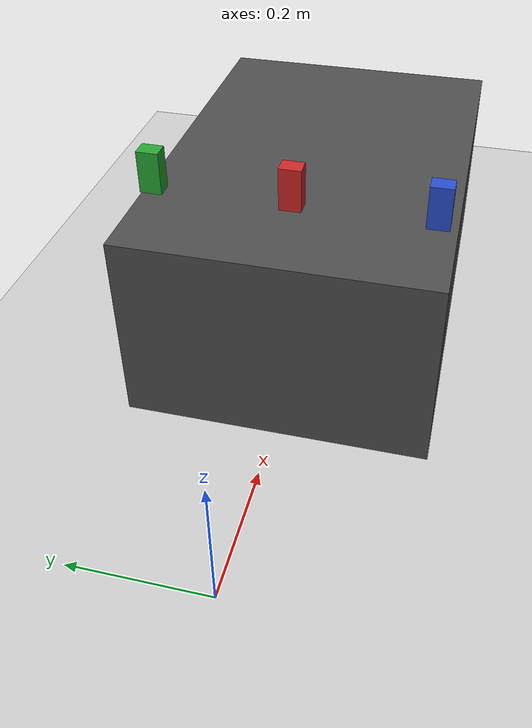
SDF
<sdf version="1.6">
 <world name="default">
  <include><uri>model://sun</uri></include>
  <include><uri>model://ground_plane</uri></include>
  <include><uri>model://table</uri><name>my_table</name><pose>0.6 0.0 0 0 0 1.5708</pose></include>
  <include><uri>model://stone</uri><name>target_stone</name><pose>0.4 0.0 0.35 0 0 0</pose></include>
  <include><uri>model://blue_stone</uri><name>stone_blue</name><pose>0.4 -0.2 0.35 0 0 0</pose></include>
  <include><uri>model://green_stone</uri><name>stone_green</name><pose>0.4 0.2 0.35 0 0 0</pose></include>
 </world>
</sdf>

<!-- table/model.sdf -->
<sdf version='1.6'>
  <model name='table'>
    <link name='link'>
      <pose>0 0 0.15 0 -0 0</pose>
      <inertial>
        <pose>0 0 0 0 -0 0</pose>
        <mass>10</mass>
        <inertia>
          <ixx>0.166667</ixx>
          <ixy>0</ixy>
          <ixz>0</ixz>
          <iyy>0.166667</iyy>
          <iyz>0</iyz>
          <izz>0.166667</izz>
        </inertia>
      </inertial>
      <self_collide>0</self_collide>
      <enable_wind>0</enable_wind>
      <kinematic>0</kinematic>

      <visual name='visual'>
        <pose>0 0 0 0 -0 0</pose>
        <geometry>
          <box>
            <size>0.453157 0.642049 0.3</size>
          </box>
        </geometry>
        <material>
          <script>
            <name>Gazebo/DarkGrey</name>
            <uri>file://media/materials/scripts/gazebo.material</uri>
          </script>
          <shader type='pixel'/>
        </material>
        <pose>0 0 0 0 -0 0</pose>
        <transparency>0</transparency>
        <cast_shadows>1</cast_shadows>
      </visual>

      <collision name='collision'>
        <laser_retro>0</laser_retro>
        <max_contacts>10</max_contacts>
        <pose>0 0 0 0 -0 0</pose>
        <geometry>
          <box>
            <size>0.453157 0.642049 0.3</size>
          </box>
        </geometry>
        <surface>
          <friction>
            <ode>
              <mu>1</mu>
              <mu2>1</mu2>
            </ode>
          </friction>
        </surface>
      </collision>
    </link>
    <static>1</static>
    <allow_auto_disable>1</allow_auto_disable>
  </model>
</sdf>

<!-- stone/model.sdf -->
<sdf version='1.6'>
  <model name='stone'>
    <link name='link'>
      <pose>0.0 0.0 0.0 0 -0 0</pose>
      <inertial>
        <!--NOTE: Uses limestone density (i.e 2000 kg/m^3) to calculate the mass
        see https://en.wikipedia.org/wiki/Limestone
        -->
        <mass>0.1024</mass>
        <inertia>
          <ixx>4.369e-5</ixx>
          <ixy>0</ixy>
          <ixz>0</ixz>
          <iyy>4.028e-5</iyy>
          <iyz>0</iyz>
          <izz>1.407e-5</izz>
        </inertia>
        <pose>0 0 0 0 -0 0</pose>
      </inertial>
        <self_collide>0</self_collide>
      <kinematic>0</kinematic>
      <enable_wind>0</enable_wind>
      <pose>0 0 0 0 -0 0</pose>
      <visual name='visual'>
        <geometry>
          <box>
            <size>0.025 0.032 0.064</size>
          </box>
        </geometry>
        <material>
          <script>
            <uri>file://media/materials/scripts/gazebo.material</uri>
            <name>Gazebo/Red</name>
          </script>
          <shader type='pixel'/>
        </material>
        <pose>0 0 0 0 -0 0</pose>
        <transparency>0</transparency>
        <cast_shadows>1</cast_shadows>
      </visual>
      <collision name='collision'>
        <laser_retro>0</laser_retro>
        <max_contacts>10</max_contacts>
        <pose>0 0 0 0 -0 0</pose>
        <geometry>
          <box>
            <size>0.025 0.032 0.064</size>
          </box>
        </geometry>
        <surface>
          <!--NOTE: Uses dynamic friction of brick on a wood surface
          see https://www.engineeringtoolbox.com/friction-coefficients-d_778.html
          -->
          <friction>
            <ode>
              <mu>0.6</mu>
              <mu2>0.6</mu2>
              <fdir1>0 0 0</fdir1>
              <slip1>0</slip1>
              <slip2>0</slip2>
            </ode>
            <torsional>
              <coefficient>1</coefficient>
              <patch_radius>0</patch_radius>
              <surface_radius>0</surface_radius>
              <use_patch_radius>1</use_patch_radius>
              <ode>
                <slip>0</slip>
              </ode>
            </torsional>
          </friction>
          <bounce>
            <restitution_coefficient>0</restitution_coefficient>
            <threshold>1e+06</threshold>
          </bounce>
          <contact>
            <collide_without_contact>0</collide_without_contact>
            <collide_without_contact_bitmask>1</collide_without_contact_bitmask>
            <collide_bitmask>1</collide_bitmask>
            <ode>
              <soft_cfm>0</soft_cfm>
              <soft_erp>0.2</soft_erp>
              <kp>1e+13</kp>
              <kd>1</kd>
              <max_vel>0</max_vel>
              <min_depth>0.003</min_depth>
            </ode>
            <bullet>
              <split_impulse>1</split_impulse>
              <split_impulse_penetration_threshold>-0.01</split_impulse_penetration_threshold>
              <soft_cfm>0</soft_cfm>
              <soft_erp>0.2</soft_erp>
              <kp>1e+13</kp>
              <kd>1</kd>
            </bullet>
          </contact>
        </surface>
      </collision>
    </link>
    <static>0</static>
    <allow_auto_disable>1</allow_auto_disable>
  </model>
</sdf>

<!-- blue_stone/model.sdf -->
<sdf version='1.6'>
  <model name='stone'>
    <link name='link'>
      <pose>0.0 0.0 0.0 0 -0 0</pose>
      <inertial>
        <!--NOTE: Uses limestone density (i.e 2000 kg/m^3) to calculate the mass
        see https://en.wikipedia.org/wiki/Limestone
        -->
        <mass>0.1024</mass>
        <inertia>
          <ixx>4.369e-5</ixx>
          <ixy>0</ixy>
          <ixz>0</ixz>
          <iyy>4.028e-5</iyy>
          <iyz>0</iyz>
          <izz>1.407e-5</izz>
        </inertia>
        <pose>0 0 0 0 -0 0</pose>
      </inertial>
        <self_collide>0</self_collide>
      <kinematic>0</kinematic>
      <enable_wind>0</enable_wind>
      <pose>0 0 0 0 -0 0</pose>
      <visual name='visual'>
        <geometry>
          <box>
            <size>0.025 0.032 0.064</size>
          </box>
        </geometry>
        <material>
          <script>
            <uri>file://media/materials/scripts/gazebo.material</uri>
            <name>Gazebo/Blue</name>
          </script>
          <shader type='pixel'/>
        </material>
        <pose>0 0 0 0 -0 0</pose>
        <transparency>0</transparency>
        <cast_shadows>1</cast_shadows>
      </visual>
      <collision name='collision'>
        <laser_retro>0</laser_retro>
        <max_contacts>10</max_contacts>
        <pose>0 0 0 0 -0 0</pose>
        <geometry>
          <box>
            <size>0.025 0.032 0.064</size>
          </box>
        </geometry>
        <surface>
          <!--NOTE: Uses dynamic friction of brick on a wood surface
          see https://www.engineeringtoolbox.com/friction-coefficients-d_778.html
          -->
          <friction>
            <ode>
              <mu>0.6</mu>
              <mu2>0.6</mu2>
              <fdir1>0 0 0</fdir1>
              <slip1>0</slip1>
              <slip2>0</slip2>
            </ode>
            <torsional>
              <coefficient>1</coefficient>
              <patch_radius>0</patch_radius>
              <surface_radius>0</surface_radius>
              <use_patch_radius>1</use_patch_radius>
              <ode>
                <slip>0</slip>
              </ode>
            </torsional>
          </friction>
          <bounce>
            <restitution_coefficient>0</restitution_coefficient>
            <threshold>1e+06</threshold>
          </bounce>
          <contact>
            <collide_without_contact>0</collide_without_contact>
            <collide_without_contact_bitmask>1</collide_without_contact_bitmask>
            <collide_bitmask>1</collide_bitmask>
            <ode>
              <soft_cfm>0</soft_cfm>
              <soft_erp>0.2</soft_erp>
              <kp>1e+13</kp>
              <kd>1</kd>
              <max_vel>0</max_vel>
              <min_depth>0.003</min_depth>
            </ode>
            <bullet>
              <split_impulse>1</split_impulse>
              <split_impulse_penetration_threshold>-0.01</split_impulse_penetration_threshold>
              <soft_cfm>0</soft_cfm>
              <soft_erp>0.2</soft_erp>
              <kp>1e+13</kp>
              <kd>1</kd>
            </bullet>
          </contact>
        </surface>
      </collision>
    </link>
    <static>0</static>
    <allow_auto_disable>1</allow_auto_disable>
  </model>
</sdf>

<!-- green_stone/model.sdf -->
<sdf version='1.6'>
  <model name='stone'>
    <link name='link'>
      <pose>0.0 0.0 0.0 0 -0 0</pose>
      <inertial>
        <!--NOTE: Uses limestone density (i.e 2000 kg/m^3) to calculate the mass
        see https://en.wikipedia.org/wiki/Limestone
        -->
        <mass>0.1024</mass>
        <inertia>
          <ixx>4.369e-5</ixx>
          <ixy>0</ixy>
          <ixz>0</ixz>
          <iyy>4.028e-5</iyy>
          <iyz>0</iyz>
          <izz>1.407e-5</izz>
        </inertia>
        <pose>0 0 0 0 -0 0</pose>
      </inertial>
        <self_collide>0</self_collide>
      <kinematic>0</kinematic>
      <enable_wind>0</enable_wind>
      <pose>0 0 0 0 -0 0</pose>
      <visual name='visual'>
        <geometry>
          <box>
            <size>0.025 0.032 0.064</size>
          </box>
        </geometry>
        <material>
          <script>
            <uri>file://media/materials/scripts/gazebo.material</uri>
            <name>Gazebo/green</name>
          </script>
          <shader type='pixel'/>
        </material>
        <pose>0 0 0 0 -0 0</pose>
        <transparency>0</transparency>
        <cast_shadows>1</cast_shadows>
      </visual>
      <collision name='collision'>
        <laser_retro>0</laser_retro>
        <max_contacts>10</max_contacts>
        <pose>0 0 0 0 -0 0</pose>
        <geometry>
          <box>
            <size>0.025 0.032 0.064</size>
          </box>
        </geometry>
        <surface>
          <!--NOTE: Uses dynamic friction of brick on a wood surface
          see https://www.engineeringtoolbox.com/friction-coefficients-d_778.html
          -->
          <friction>
            <ode>
              <mu>0.6</mu>
              <mu2>0.6</mu2>
              <fdir1>0 0 0</fdir1>
              <slip1>0</slip1>
              <slip2>0</slip2>
            </ode>
            <torsional>
              <coefficient>1</coefficient>
              <patch_radius>0</patch_radius>
              <surface_radius>0</surface_radius>
              <use_patch_radius>1</use_patch_radius>
              <ode>
                <slip>0</slip>
              </ode>
            </torsional>
          </friction>
          <bounce>
            <restitution_coefficient>0</restitution_coefficient>
            <threshold>1e+06</threshold>
          </bounce>
          <contact>
            <collide_without_contact>0</collide_without_contact>
            <collide_without_contact_bitmask>1</collide_without_contact_bitmask>
            <collide_bitmask>1</collide_bitmask>
            <ode>
              <soft_cfm>0</soft_cfm>
              <soft_erp>0.2</soft_erp>
              <kp>1e+13</kp>
              <kd>1</kd>
              <max_vel>0</max_vel>
              <min_depth>0.003</min_depth>
            </ode>
            <bullet>
              <split_impulse>1</split_impulse>
              <split_impulse_penetration_threshold>-0.01</split_impulse_penetration_threshold>
              <soft_cfm>0</soft_cfm>
              <soft_erp>0.2</soft_erp>
              <kp>1e+13</kp>
              <kd>1</kd>
            </bullet>
          </contact>
        </surface>
      </collision>
    </link>
    <static>0</static>
    <allow_auto_disable>1</allow_auto_disable>
  </model>
</sdf>
